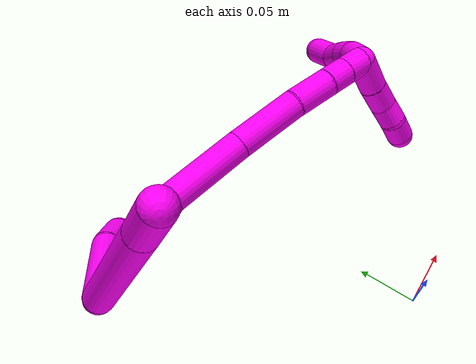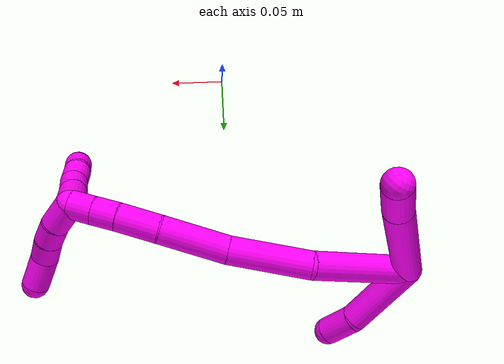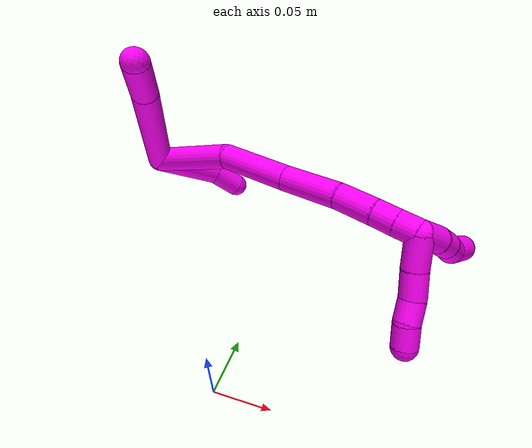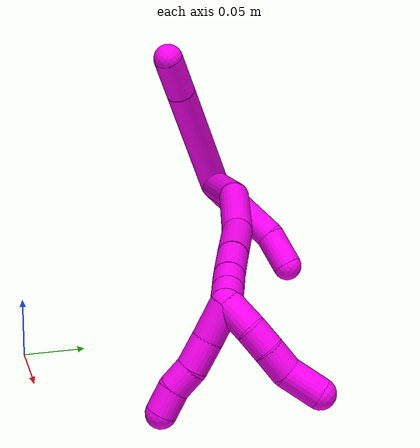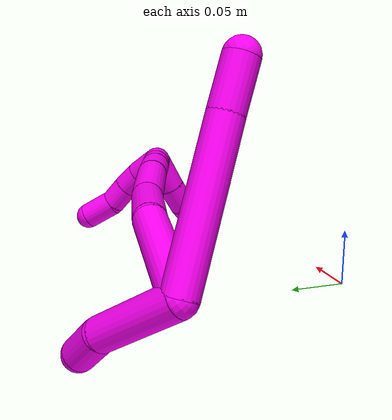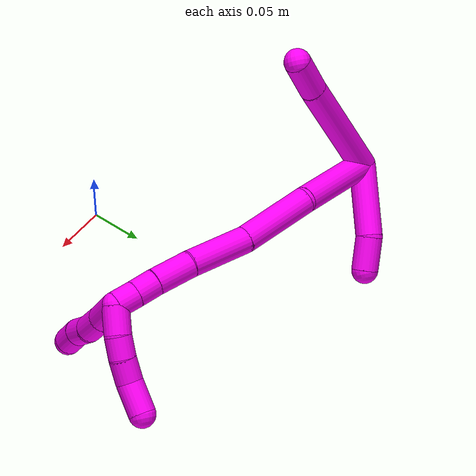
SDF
<sdf version="1.7">
 <world name="default">
  <model name="10">
   <static>0</static>
   <link name="10">
    <collision name="collision-cylinder-e_1_2_8">
     <pose>0.034531 -0.027771 -0.034897 2.46941 0.658852 1.54921</pose>
     <geometry><cylinder><radius>0.0125</radius><length>0.112808</length></cylinder></geometry>
     <surface>
      <friction><ode><mu>1.16</mu><mu2>1.16</mu2><slip1>0</slip1><slip2>0</slip2></ode></friction>
      <contact><ode><kp>1e+06</kp><kd>1</kd><max_vel>0</max_vel><min_depth>0.001</min_depth></ode></contact>
     </surface>
    </collision>
    <visual name="visual-cylinder-e_1_2_8">
     <pose>0.034531 -0.027771 -0.034897 2.46941 0.658852 1.54921</pose>
     <geometry><cylinder><radius>0.0125</radius><length>0.112808</length></cylinder></geometry>
     <material><ambient>1 0 0.964706 1</ambient></material>
    </visual>
    <collision name="collision-cylinder-e_2_8_6">
     <pose>0.079619 -0.064808 -0.08198 2.4915 0.603736 1.49183</pose>
     <geometry><cylinder><radius>0.0125</radius><length>0.037192</length></cylinder></geometry>
     <surface>
      <friction><ode><mu>1.16</mu><mu2>1.16</mu2><slip1>0</slip1><slip2>0</slip2></ode></friction>
      <contact><ode><kp>1e+06</kp><kd>1</kd><max_vel>0</max_vel><min_depth>0.001</min_depth></ode></contact>
     </surface>
    </collision>
    <visual name="visual-cylinder-e_2_8_6">
     <pose>0.079619 -0.064808 -0.08198 2.4915 0.603736 1.49183</pose>
     <geometry><cylinder><radius>0.0125</radius><length>0.037192</length></cylinder></geometry>
     <material><ambient>1 0 0.964706 1</ambient></material>
    </visual>
    <collision name="collision-cylinder-e_1_2_9">
     <pose>0.005283 -0.001073 0.033748 0.031796 0.155203 0.002473</pose>
     <geometry><cylinder><radius>0.0125</radius><length>0.068352</length></cylinder></geometry>
     <surface>
      <friction><ode><mu>1.16</mu><mu2>1.16</mu2><slip1>0</slip1><slip2>0</slip2></ode></friction>
      <contact><ode><kp>1e+06</kp><kd>1</kd><max_vel>0</max_vel><min_depth>0.001</min_depth></ode></contact>
     </surface>
    </collision>
    <visual name="visual-cylinder-e_1_2_9">
     <pose>0.005283 -0.001073 0.033748 0.031796 0.155203 0.002473</pose>
     <geometry><cylinder><radius>0.0125</radius><length>0.068352</length></cylinder></geometry>
     <material><ambient>1 0 0.964706 1</ambient></material>
    </visual>
    <collision name="collision-cylinder-e_2_9_5">
     <pose>0.014369 0.001789 0.082344 -0.259141 0.242687 -0.031776</pose>
     <geometry><cylinder><radius>0.0125</radius><length>0.031648</length></cylinder></geometry>
     <surface>
      <friction><ode><mu>1.16</mu><mu2>1.16</mu2><slip1>0</slip1><slip2>0</slip2></ode></friction>
      <contact><ode><kp>1e+06</kp><kd>1</kd><max_vel>0</max_vel><min_depth>0.001</min_depth></ode></contact>
     </surface>
    </collision>
    <visual name="visual-cylinder-e_2_9_5">
     <pose>0.014369 0.001789 0.082344 -0.259141 0.242687 -0.031776</pose>
     <geometry><cylinder><radius>0.0125</radius><length>0.031648</length></cylinder></geometry>
     <material><ambient>1 0 0.964706 1</ambient></material>
    </visual>
    <collision name="collision-cylinder-e_1_2_10">
     <pose>0.041351 -0.011509 0.012428 0.747043 1.18202 0.514324</pose>
     <geometry><cylinder><radius>0.0125</radius><length>0.089372</length></cylinder></geometry>
     <surface>
      <friction><ode><mu>1.16</mu><mu2>1.16</mu2><slip1>0</slip1><slip2>0</slip2></ode></friction>
      <contact><ode><kp>1e+06</kp><kd>1</kd><max_vel>0</max_vel><min_depth>0.001</min_depth></ode></contact>
     </surface>
    </collision>
    <visual name="visual-cylinder-e_1_2_10">
     <pose>0.041351 -0.011509 0.012428 0.747043 1.18202 0.514324</pose>
     <geometry><cylinder><radius>0.0125</radius><length>0.089372</length></cylinder></geometry>
     <material><ambient>1 0 0.964706 1</ambient></material>
    </visual>
    <collision name="collision-cylinder-e_2_10_11">
     <pose>0.116057 -0.020563 0.037567 -0.190803 1.20055 -0.130823</pose>
     <geometry><cylinder><radius>0.0125</radius><length>0.071558</length></cylinder></geometry>
     <surface>
      <friction><ode><mu>1.16</mu><mu2>1.16</mu2><slip1>0</slip1><slip2>0</slip2></ode></friction>
      <contact><ode><kp>1e+06</kp><kd>1</kd><max_vel>0</max_vel><min_depth>0.001</min_depth></ode></contact>
     </surface>
    </collision>
    <visual name="visual-cylinder-e_2_10_11">
     <pose>0.116057 -0.020563 0.037567 -0.190803 1.20055 -0.130823</pose>
     <geometry><cylinder><radius>0.0125</radius><length>0.071558</length></cylinder></geometry>
     <material><ambient>1 0 0.964706 1</ambient></material>
    </visual>
    <collision name="collision-cylinder-e_3_11_12">
     <pose>0.178706 -0.016968 0.05644 -0.183 1.3601 -0.148142</pose>
     <geometry><cylinder><radius>0.0125</radius><length>0.059914</length></cylinder></geometry>
     <surface>
      <friction><ode><mu>1.16</mu><mu2>1.16</mu2><slip1>0</slip1><slip2>0</slip2></ode></friction>
      <contact><ode><kp>1e+06</kp><kd>1</kd><max_vel>0</max_vel><min_depth>0.001</min_depth></ode></contact>
     </surface>
    </collision>
    <visual name="visual-cylinder-e_3_11_12">
     <pose>0.178706 -0.016968 0.05644 -0.183 1.3601 -0.148142</pose>
     <geometry><cylinder><radius>0.0125</radius><length>0.059914</length></cylinder></geometry>
     <material><ambient>1 0 0.964706 1</ambient></material>
    </visual>
    <collision name="collision-cylinder-e_4_12_13">
     <pose>0.225644 -0.013422 0.067575 -0.450542 1.26728 -0.333603</pose>
     <geometry><cylinder><radius>0.0125</radius><length>0.036976</length></cylinder></geometry>
     <surface>
      <friction><ode><mu>1.16</mu><mu2>1.16</mu2><slip1>0</slip1><slip2>0</slip2></ode></friction>
      <contact><ode><kp>1e+06</kp><kd>1</kd><max_vel>0</max_vel><min_depth>0.001</min_depth></ode></contact>
     </surface>
    </collision>
    <visual name="visual-cylinder-e_4_12_13">
     <pose>0.225644 -0.013422 0.067575 -0.450542 1.26728 -0.333603</pose>
     <geometry><cylinder><radius>0.0125</radius><length>0.036976</length></cylinder></geometry>
     <material><ambient>1 0 0.964706 1</ambient></material>
    </visual>
    <collision name="collision-cylinder-e_5_13_14">
     <pose>0.253289 -0.009377 0.076018 -0.441266 1.20454 -0.30597</pose>
     <geometry><cylinder><radius>0.0125</radius><length>0.021427</length></cylinder></geometry>
     <surface>
      <friction><ode><mu>1.16</mu><mu2>1.16</mu2><slip1>0</slip1><slip2>0</slip2></ode></friction>
      <contact><ode><kp>1e+06</kp><kd>1</kd><max_vel>0</max_vel><min_depth>0.001</min_depth></ode></contact>
     </surface>
    </collision>
    <visual name="visual-cylinder-e_5_13_14">
     <pose>0.253289 -0.009377 0.076018 -0.441266 1.20454 -0.30597</pose>
     <geometry><cylinder><radius>0.0125</radius><length>0.021427</length></cylinder></geometry>
     <material><ambient>1 0 0.964706 1</ambient></material>
    </visual>
    <collision name="collision-cylinder-e_6_14_1">
     <pose>0.27307 -0.006256 0.082627 -0.441045 1.22956 -0.313946</pose>
     <geometry><cylinder><radius>0.0125</radius><length>0.020753</length></cylinder></geometry>
     <surface>
      <friction><ode><mu>1.16</mu><mu2>1.16</mu2><slip1>0</slip1><slip2>0</slip2></ode></friction>
      <contact><ode><kp>1e+06</kp><kd>1</kd><max_vel>0</max_vel><min_depth>0.001</min_depth></ode></contact>
     </surface>
    </collision>
    <visual name="visual-cylinder-e_6_14_1">
     <pose>0.27307 -0.006256 0.082627 -0.441045 1.22956 -0.313946</pose>
     <geometry><cylinder><radius>0.0125</radius><length>0.020753</length></cylinder></geometry>
     <material><ambient>1 0 0.964706 1</ambient></material>
    </visual>
    <collision name="collision-cylinder-e_1_1_15">
     <pose>0.284401 -0.004159 0.099049 -0.046215 0.116227 -0.002689</pose>
     <geometry><cylinder><radius>0.0125</radius><length>0.026771</length></cylinder></geometry>
     <surface>
      <friction><ode><mu>1.16</mu><mu2>1.16</mu2><slip1>0</slip1><slip2>0</slip2></ode></friction>
      <contact><ode><kp>1e+06</kp><kd>1</kd><max_vel>0</max_vel><min_depth>0.001</min_depth></ode></contact>
     </surface>
    </collision>
    <visual name="visual-cylinder-e_1_1_15">
     <pose>0.284401 -0.004159 0.099049 -0.046215 0.116227 -0.002689</pose>
     <geometry><cylinder><radius>0.0125</radius><length>0.026771</length></cylinder></geometry>
     <material><ambient>1 0 0.964706 1</ambient></material>
    </visual>
    <collision name="collision-cylinder-e_2_15_16">
     <pose>0.285355 -0.002112 0.1225 -0.140003 -0.05821 0.004083</pose>
     <geometry><cylinder><radius>0.0125</radius><length>0.020577</length></cylinder></geometry>
     <surface>
      <friction><ode><mu>1.16</mu><mu2>1.16</mu2><slip1>0</slip1><slip2>0</slip2></ode></friction>
      <contact><ode><kp>1e+06</kp><kd>1</kd><max_vel>0</max_vel><min_depth>0.001</min_depth></ode></contact>
     </surface>
    </collision>
    <visual name="visual-cylinder-e_2_15_16">
     <pose>0.285355 -0.002112 0.1225 -0.140003 -0.05821 0.004083</pose>
     <geometry><cylinder><radius>0.0125</radius><length>0.020577</length></cylinder></geometry>
     <material><ambient>1 0 0.964706 1</ambient></material>
    </visual>
    <collision name="collision-cylinder-e_3_16_17">
     <pose>0.282779 0.001397 0.143404 -0.191035 -0.178948 0.01719</pose>
     <geometry><cylinder><radius>0.0125</radius><length>0.022218</length></cylinder></geometry>
     <surface>
      <friction><ode><mu>1.16</mu><mu2>1.16</mu2><slip1>0</slip1><slip2>0</slip2></ode></friction>
      <contact><ode><kp>1e+06</kp><kd>1</kd><max_vel>0</max_vel><min_depth>0.001</min_depth></ode></contact>
     </surface>
    </collision>
    <visual name="visual-cylinder-e_3_16_17">
     <pose>0.282779 0.001397 0.143404 -0.191035 -0.178948 0.01719</pose>
     <geometry><cylinder><radius>0.0125</radius><length>0.022218</length></cylinder></geometry>
     <material><ambient>1 0 0.964706 1</ambient></material>
    </visual>
    <collision name="collision-cylinder-e_4_17_4">
     <pose>0.278917 0.001374 0.16909 0.139408 -0.12413 -0.008677</pose>
     <geometry><cylinder><radius>0.0125</radius><length>0.030434</length></cylinder></geometry>
     <surface>
      <friction><ode><mu>1.16</mu><mu2>1.16</mu2><slip1>0</slip1><slip2>0</slip2></ode></friction>
      <contact><ode><kp>1e+06</kp><kd>1</kd><max_vel>0</max_vel><min_depth>0.001</min_depth></ode></contact>
     </surface>
    </collision>
    <visual name="visual-cylinder-e_4_17_4">
     <pose>0.278917 0.001374 0.16909 0.139408 -0.12413 -0.008677</pose>
     <geometry><cylinder><radius>0.0125</radius><length>0.030434</length></cylinder></geometry>
     <material><ambient>1 0 0.964706 1</ambient></material>
    </visual>
    <collision name="collision-cylinder-e_1_1_18">
     <pose>0.283353 0.010422 0.08975 -1.3145 0.032096 -0.02477</pose>
     <geometry><cylinder><radius>0.0125</radius><length>0.031434</length></cylinder></geometry>
     <surface>
      <friction><ode><mu>1.16</mu><mu2>1.16</mu2><slip1>0</slip1><slip2>0</slip2></ode></friction>
      <contact><ode><kp>1e+06</kp><kd>1</kd><max_vel>0</max_vel><min_depth>0.001</min_depth></ode></contact>
     </surface>
    </collision>
    <visual name="visual-cylinder-e_1_1_18">
     <pose>0.283353 0.010422 0.08975 -1.3145 0.032096 -0.02477</pose>
     <geometry><cylinder><radius>0.0125</radius><length>0.031434</length></cylinder></geometry>
     <material><ambient>1 0 0.964706 1</ambient></material>
    </visual>
    <collision name="collision-cylinder-e_2_18_19">
     <pose>0.285242 0.038007 0.096824 -1.3262 0.108026 -0.08441</pose>
     <geometry><cylinder><radius>0.0125</radius><length>0.025688</length></cylinder></geometry>
     <surface>
      <friction><ode><mu>1.16</mu><mu2>1.16</mu2><slip1>0</slip1><slip2>0</slip2></ode></friction>
      <contact><ode><kp>1e+06</kp><kd>1</kd><max_vel>0</max_vel><min_depth>0.001</min_depth></ode></contact>
     </surface>
    </collision>
    <visual name="visual-cylinder-e_2_18_19">
     <pose>0.285242 0.038007 0.096824 -1.3262 0.108026 -0.08441</pose>
     <geometry><cylinder><radius>0.0125</radius><length>0.025688</length></cylinder></geometry>
     <material><ambient>1 0 0.964706 1</ambient></material>
    </visual>
    <collision name="collision-cylinder-e_3_19_20">
     <pose>0.287305 0.060853 0.099994 -1.56336 0.064721 -0.064242</pose>
     <geometry><cylinder><radius>0.0125</radius><length>0.020959</length></cylinder></geometry>
     <surface>
      <friction><ode><mu>1.16</mu><mu2>1.16</mu2><slip1>0</slip1><slip2>0</slip2></ode></friction>
      <contact><ode><kp>1e+06</kp><kd>1</kd><max_vel>0</max_vel><min_depth>0.001</min_depth></ode></contact>
     </surface>
    </collision>
    <visual name="visual-cylinder-e_3_19_20">
     <pose>0.287305 0.060853 0.099994 -1.56336 0.064721 -0.064242</pose>
     <geometry><cylinder><radius>0.0125</radius><length>0.020959</length></cylinder></geometry>
     <material><ambient>1 0 0.964706 1</ambient></material>
    </visual>
    <collision name="collision-cylinder-e_4_20_3">
     <pose>0.28876 0.081864 0.102925 -1.30674 0.071039 -0.054392</pose>
     <geometry><cylinder><radius>0.0125</radius><length>0.021919</length></cylinder></geometry>
     <surface>
      <friction><ode><mu>1.16</mu><mu2>1.16</mu2><slip1>0</slip1><slip2>0</slip2></ode></friction>
      <contact><ode><kp>1e+06</kp><kd>1</kd><max_vel>0</max_vel><min_depth>0.001</min_depth></ode></contact>
     </surface>
    </collision>
    <visual name="visual-cylinder-e_4_20_3">
     <pose>0.28876 0.081864 0.102925 -1.30674 0.071039 -0.054392</pose>
     <geometry><cylinder><radius>0.0125</radius><length>0.021919</length></cylinder></geometry>
     <material><ambient>1 0 0.964706 1</ambient></material>
    </visual>
    <collision name="collision-sphere-3">
     <pose>0.289538 0.092417 0.105778 0 -0 0</pose>
     <geometry><sphere><radius>0.0125</radius></sphere></geometry>
     <surface>
      <friction><ode><mu>1.16</mu><mu2>1.16</mu2><slip1>0</slip1><slip2>0</slip2></ode></friction>
      <contact><ode><kp>1e+06</kp><kd>1</kd><max_vel>0</max_vel><min_depth>0.001</min_depth></ode></contact>
     </surface>
    </collision>
    <visual name="visual-sphere-3">
     <pose>0.289538 0.092417 0.105778 0 -0 0</pose>
     <geometry><sphere><radius>0.0125</radius></sphere></geometry>
     <material><ambient>1 0 0.964706 1</ambient></material>
    </visual>
    <collision name="collision-sphere-20">
     <pose>0.287983 0.071311 0.100072 0 -0 0</pose>
     <geometry><sphere><radius>0.0125</radius></sphere></geometry>
     <surface>
      <friction><ode><mu>1.16</mu><mu2>1.16</mu2><slip1>0</slip1><slip2>0</slip2></ode></friction>
      <contact><ode><kp>1e+06</kp><kd>1</kd><max_vel>0</max_vel><min_depth>0.001</min_depth></ode></contact>
     </surface>
    </collision>
    <visual name="visual-sphere-20">
     <pose>0.287983 0.071311 0.100072 0 -0 0</pose>
     <geometry><sphere><radius>0.0125</radius></sphere></geometry>
     <material><ambient>1 0 0.964706 1</ambient></material>
    </visual>
    <collision name="collision-sphere-19">
     <pose>0.286627 0.050396 0.099917 0 -0 0</pose>
     <geometry><sphere><radius>0.0125</radius></sphere></geometry>
     <surface>
      <friction><ode><mu>1.16</mu><mu2>1.16</mu2><slip1>0</slip1><slip2>0</slip2></ode></friction>
      <contact><ode><kp>1e+06</kp><kd>1</kd><max_vel>0</max_vel><min_depth>0.001</min_depth></ode></contact>
     </surface>
    </collision>
    <visual name="visual-sphere-19">
     <pose>0.286627 0.050396 0.099917 0 -0 0</pose>
     <geometry><sphere><radius>0.0125</radius></sphere></geometry>
     <material><ambient>1 0 0.964706 1</ambient></material>
    </visual>
    <collision name="collision-sphere-10">
     <pose>0.082702 -0.023019 0.024856 0 -0 0</pose>
     <geometry><sphere><radius>0.0125</radius></sphere></geometry>
     <surface>
      <friction><ode><mu>1.16</mu><mu2>1.16</mu2><slip1>0</slip1><slip2>0</slip2></ode></friction>
      <contact><ode><kp>1e+06</kp><kd>1</kd><max_vel>0</max_vel><min_depth>0.001</min_depth></ode></contact>
     </surface>
    </collision>
    <visual name="visual-sphere-10">
     <pose>0.082702 -0.023019 0.024856 0 -0 0</pose>
     <geometry><sphere><radius>0.0125</radius></sphere></geometry>
     <material><ambient>1 0 0.964706 1</ambient></material>
    </visual>
    <collision name="collision-sphere-5">
     <pose>0.018171 0.005725 0.097191 0 -0 0</pose>
     <geometry><sphere><radius>0.0125</radius></sphere></geometry>
     <surface>
      <friction><ode><mu>1.16</mu><mu2>1.16</mu2><slip1>0</slip1><slip2>0</slip2></ode></friction>
      <contact><ode><kp>1e+06</kp><kd>1</kd><max_vel>0</max_vel><min_depth>0.001</min_depth></ode></contact>
     </surface>
    </collision>
    <visual name="visual-sphere-5">
     <pose>0.018171 0.005725 0.097191 0 -0 0</pose>
     <geometry><sphere><radius>0.0125</radius></sphere></geometry>
     <material><ambient>1 0 0.964706 1</ambient></material>
    </visual>
    <collision name="collision-sphere-6">
     <pose>0.090177 -0.074074 -0.094166 0 -0 0</pose>
     <geometry><sphere><radius>0.0125</radius></sphere></geometry>
     <surface>
      <friction><ode><mu>1.16</mu><mu2>1.16</mu2><slip1>0</slip1><slip2>0</slip2></ode></friction>
      <contact><ode><kp>1e+06</kp><kd>1</kd><max_vel>0</max_vel><min_depth>0.001</min_depth></ode></contact>
     </surface>
    </collision>
    <visual name="visual-sphere-6">
     <pose>0.090177 -0.074074 -0.094166 0 -0 0</pose>
     <geometry><sphere><radius>0.0125</radius></sphere></geometry>
     <material><ambient>1 0 0.964706 1</ambient></material>
    </visual>
    <collision name="collision-sphere-9">
     <pose>0.010566 -0.002147 0.067497 0 -0 0</pose>
     <geometry><sphere><radius>0.0125</radius></sphere></geometry>
     <surface>
      <friction><ode><mu>1.16</mu><mu2>1.16</mu2><slip1>0</slip1><slip2>0</slip2></ode></friction>
      <contact><ode><kp>1e+06</kp><kd>1</kd><max_vel>0</max_vel><min_depth>0.001</min_depth></ode></contact>
     </surface>
    </collision>
    <visual name="visual-sphere-9">
     <pose>0.010566 -0.002147 0.067497 0 -0 0</pose>
     <geometry><sphere><radius>0.0125</radius></sphere></geometry>
     <material><ambient>1 0 0.964706 1</ambient></material>
    </visual>
    <collision name="collision-sphere-2">
     <geometry><sphere><radius>0.0125</radius></sphere></geometry>
     <surface>
      <friction><ode><mu>1.16</mu><mu2>1.16</mu2><slip1>0</slip1><slip2>0</slip2></ode></friction>
      <contact><ode><kp>1e+06</kp><kd>1</kd><max_vel>0</max_vel><min_depth>0.001</min_depth></ode></contact>
     </surface>
    </collision>
    <visual name="visual-sphere-2">
     <geometry><sphere><radius>0.0125</radius></sphere></geometry>
     <material><ambient>1 0 0.964706 1</ambient></material>
    </visual>
    <collision name="collision-sphere-8">
     <pose>0.069062 -0.055542 -0.069794 0 -0 0</pose>
     <geometry><sphere><radius>0.0125</radius></sphere></geometry>
     <surface>
      <friction><ode><mu>1.16</mu><mu2>1.16</mu2><slip1>0</slip1><slip2>0</slip2></ode></friction>
      <contact><ode><kp>1e+06</kp><kd>1</kd><max_vel>0</max_vel><min_depth>0.001</min_depth></ode></contact>
     </surface>
    </collision>
    <visual name="visual-sphere-8">
     <pose>0.069062 -0.055542 -0.069794 0 -0 0</pose>
     <geometry><sphere><radius>0.0125</radius></sphere></geometry>
     <material><ambient>1 0 0.964706 1</ambient></material>
    </visual>
    <collision name="collision-sphere-11">
     <pose>0.149411 -0.018108 0.050279 0 -0 0</pose>
     <geometry><sphere><radius>0.0125</radius></sphere></geometry>
     <surface>
      <friction><ode><mu>1.16</mu><mu2>1.16</mu2><slip1>0</slip1><slip2>0</slip2></ode></friction>
      <contact><ode><kp>1e+06</kp><kd>1</kd><max_vel>0</max_vel><min_depth>0.001</min_depth></ode></contact>
     </surface>
    </collision>
    <visual name="visual-sphere-11">
     <pose>0.149411 -0.018108 0.050279 0 -0 0</pose>
     <geometry><sphere><radius>0.0125</radius></sphere></geometry>
     <material><ambient>1 0 0.964706 1</ambient></material>
    </visual>
    <collision name="collision-sphere-12">
     <pose>0.208001 -0.015828 0.0626 0 -0 0</pose>
     <geometry><sphere><radius>0.0125</radius></sphere></geometry>
     <surface>
      <friction><ode><mu>1.16</mu><mu2>1.16</mu2><slip1>0</slip1><slip2>0</slip2></ode></friction>
      <contact><ode><kp>1e+06</kp><kd>1</kd><max_vel>0</max_vel><min_depth>0.001</min_depth></ode></contact>
     </surface>
    </collision>
    <visual name="visual-sphere-12">
     <pose>0.208001 -0.015828 0.0626 0 -0 0</pose>
     <geometry><sphere><radius>0.0125</radius></sphere></geometry>
     <material><ambient>1 0 0.964706 1</ambient></material>
    </visual>
    <collision name="collision-sphere-13">
     <pose>0.243287 -0.011015 0.072549 0 -0 0</pose>
     <geometry><sphere><radius>0.0125</radius></sphere></geometry>
     <surface>
      <friction><ode><mu>1.16</mu><mu2>1.16</mu2><slip1>0</slip1><slip2>0</slip2></ode></friction>
      <contact><ode><kp>1e+06</kp><kd>1</kd><max_vel>0</max_vel><min_depth>0.001</min_depth></ode></contact>
     </surface>
    </collision>
    <visual name="visual-sphere-13">
     <pose>0.243287 -0.011015 0.072549 0 -0 0</pose>
     <geometry><sphere><radius>0.0125</radius></sphere></geometry>
     <material><ambient>1 0 0.964706 1</ambient></material>
    </visual>
    <collision name="collision-sphere-14">
     <pose>0.263292 -0.007738 0.079487 0 -0 0</pose>
     <geometry><sphere><radius>0.0125</radius></sphere></geometry>
     <surface>
      <friction><ode><mu>1.16</mu><mu2>1.16</mu2><slip1>0</slip1><slip2>0</slip2></ode></friction>
      <contact><ode><kp>1e+06</kp><kd>1</kd><max_vel>0</max_vel><min_depth>0.001</min_depth></ode></contact>
     </surface>
    </collision>
    <visual name="visual-sphere-14">
     <pose>0.263292 -0.007738 0.079487 0 -0 0</pose>
     <geometry><sphere><radius>0.0125</radius></sphere></geometry>
     <material><ambient>1 0 0.964706 1</ambient></material>
    </visual>
    <collision name="collision-sphere-1">
     <pose>0.282849 -0.004774 0.085768 0 -0 0</pose>
     <geometry><sphere><radius>0.0125</radius></sphere></geometry>
     <surface>
      <friction><ode><mu>1.16</mu><mu2>1.16</mu2><slip1>0</slip1><slip2>0</slip2></ode></friction>
      <contact><ode><kp>1e+06</kp><kd>1</kd><max_vel>0</max_vel><min_depth>0.001</min_depth></ode></contact>
     </surface>
    </collision>
    <visual name="visual-sphere-1">
     <pose>0.282849 -0.004774 0.085768 0 -0 0</pose>
     <geometry><sphere><radius>0.0125</radius></sphere></geometry>
     <material><ambient>1 0 0.964706 1</ambient></material>
    </visual>
    <collision name="collision-sphere-18">
     <pose>0.283857 0.025618 0.093732 0 -0 0</pose>
     <geometry><sphere><radius>0.0125</radius></sphere></geometry>
     <surface>
      <friction><ode><mu>1.16</mu><mu2>1.16</mu2><slip1>0</slip1><slip2>0</slip2></ode></friction>
      <contact><ode><kp>1e+06</kp><kd>1</kd><max_vel>0</max_vel><min_depth>0.001</min_depth></ode></contact>
     </surface>
    </collision>
    <visual name="visual-sphere-18">
     <pose>0.283857 0.025618 0.093732 0 -0 0</pose>
     <geometry><sphere><radius>0.0125</radius></sphere></geometry>
     <material><ambient>1 0 0.964706 1</ambient></material>
    </visual>
    <collision name="collision-sphere-15">
     <pose>0.285953 -0.003545 0.11233 0 -0 0</pose>
     <geometry><sphere><radius>0.0125</radius></sphere></geometry>
     <surface>
      <friction><ode><mu>1.16</mu><mu2>1.16</mu2><slip1>0</slip1><slip2>0</slip2></ode></friction>
      <contact><ode><kp>1e+06</kp><kd>1</kd><max_vel>0</max_vel><min_depth>0.001</min_depth></ode></contact>
     </surface>
    </collision>
    <visual name="visual-sphere-15">
     <pose>0.285953 -0.003545 0.11233 0 -0 0</pose>
     <geometry><sphere><radius>0.0125</radius></sphere></geometry>
     <material><ambient>1 0 0.964706 1</ambient></material>
    </visual>
    <collision name="collision-sphere-16">
     <pose>0.284756 -0.000679 0.132671 0 -0 0</pose>
     <geometry><sphere><radius>0.0125</radius></sphere></geometry>
     <surface>
      <friction><ode><mu>1.16</mu><mu2>1.16</mu2><slip1>0</slip1><slip2>0</slip2></ode></friction>
      <contact><ode><kp>1e+06</kp><kd>1</kd><max_vel>0</max_vel><min_depth>0.001</min_depth></ode></contact>
     </surface>
    </collision>
    <visual name="visual-sphere-16">
     <pose>0.284756 -0.000679 0.132671 0 -0 0</pose>
     <geometry><sphere><radius>0.0125</radius></sphere></geometry>
     <material><ambient>1 0 0.964706 1</ambient></material>
    </visual>
    <collision name="collision-sphere-17">
     <pose>0.280801 0.003473 0.154136 0 -0 0</pose>
     <geometry><sphere><radius>0.0125</radius></sphere></geometry>
     <surface>
      <friction><ode><mu>1.16</mu><mu2>1.16</mu2><slip1>0</slip1><slip2>0</slip2></ode></friction>
      <contact><ode><kp>1e+06</kp><kd>1</kd><max_vel>0</max_vel><min_depth>0.001</min_depth></ode></contact>
     </surface>
    </collision>
    <visual name="visual-sphere-17">
     <pose>0.280801 0.003473 0.154136 0 -0 0</pose>
     <geometry><sphere><radius>0.0125</radius></sphere></geometry>
     <material><ambient>1 0 0.964706 1</ambient></material>
    </visual>
    <collision name="collision-sphere-4">
     <pose>0.277033 -0.000724 0.184043 0 -0 0</pose>
     <geometry><sphere><radius>0.0125</radius></sphere></geometry>
     <surface>
      <friction><ode><mu>1.16</mu><mu2>1.16</mu2><slip1>0</slip1><slip2>0</slip2></ode></friction>
      <contact><ode><kp>1e+06</kp><kd>1</kd><max_vel>0</max_vel><min_depth>0.001</min_depth></ode></contact>
     </surface>
    </collision>
    <visual name="visual-sphere-4">
     <pose>0.277033 -0.000724 0.184043 0 -0 0</pose>
     <geometry><sphere><radius>0.0125</radius></sphere></geometry>
     <material><ambient>1 0 0.964706 1</ambient></material>
    </visual>
    <inertial>
     <pose>0.142213 -0.007482 0.045486 0 -0 0</pose>
     <mass>0.75</mass>
     <inertia>
      <ixx>0.000235</ixx>
      <ixy>0</ixy>
      <ixz>0</ixz>
      <iyy>0.000326</iyy>
      <iyz>0</iyz>
      <izz>-0.00012</izz>
     </inertia>
    </inertial>
   </link>
   <pose>-0.153284 0.198866 0.069022 -2.22703 -0.270919 -0.460773</pose>
  </model>
 </world>
</sdf>
